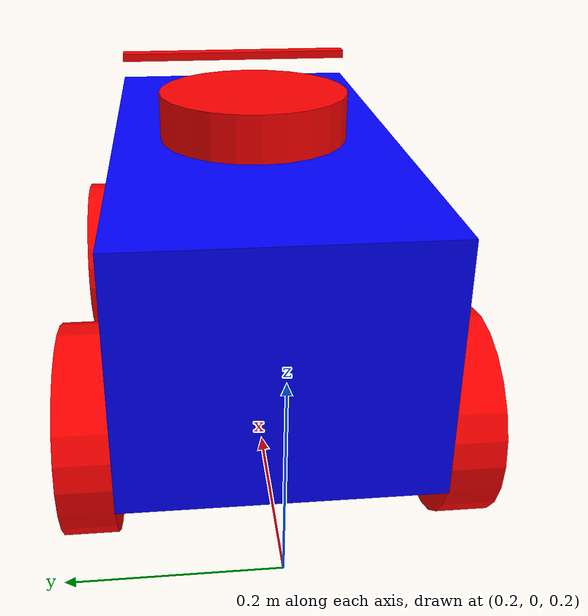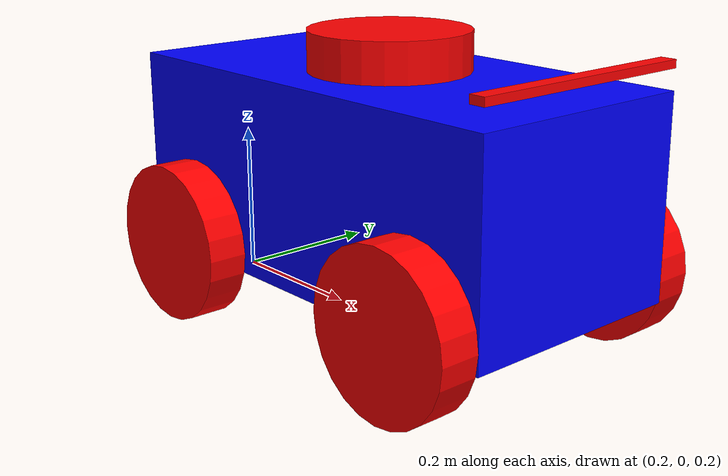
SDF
<?xml version="1.0" ?>
<sdf version="1.8">
        <model name='Joker' canonical_link='base_link'>
            <link name='base_link'>
                <pose relative_to='__model__'>0.5 0 0.4 0 0 0</pose>
                <inertial>
                    <inertia>
                        <ixx>0.001</ixx>
                        <ixy>0.000</ixy>
                        <ixz>0.000</ixz>
                        <iyy>0.001</iyy>
                        <iyz>0.000</iyz>
                        <izz>0.001</izz>
                    </inertia>
                    <mass>0.05</mass>
                </inertial>
                <visual name='visual'>
                    <geometry>
                        <box>
                            <size>0.6 0.3 0.25</size>
                        </box>
                    </geometry>
                    <!--let's add color to our link-->
                    <material>
                        <ambient>0.0 0.0 1.0 1</ambient>
                        <diffuse>0.0 0.0 1.0 1</diffuse>
                        <specular>0.0 0.0 1.0 1</specular>
                    </material>
                </visual>
                <collision name='collision'> <!--todo: describe why we need the collision-->
                    <geometry>
                        <box>
                            <size>0.6 0.3 0.25</size>
                        </box>
                    </geometry>
                </collision>
            </link>

            <link name='base_camera'>
                <pose relative_to="base_link">0.29 0 0.155 0 0 0</pose>

                <inertial>
                    <mass>0.2</mass>
                    <inertia>
                        <ixx>0.03</ixx>
                        <ixy>0</ixy>
                        <ixz>0</ixz>
                        <iyy>0.03</iyy>
                        <iyz>0</iyz>
                        <izz>0.003</izz>
                    </inertia>
                </inertial>
                <visual name='visual'>
                    <geometry>
                        <box>
                            <size>0.02 0.3 0.01</size>
                        </box>
                    </geometry>
                    <material>
                        <ambient>1.0 0.0 0.0 1</ambient>
                        <diffuse>1.0 0.0 0.0 1</diffuse>
                        <specular>1.0 0.0 0.0 1</specular>
                    </material>
                </visual>
                <collision name='collision'>
                    <geometry>
                        <box>
                            <size>0.02 0.3 0.01</size>
                        </box>
                    </geometry>
                </collision>
            </link>

            <link name='base_scan'>
                <pose relative_to="base_link">0 0 0.15 0 0 0</pose>

                <inertial>
                    <mass>0.2</mass>
                    <inertia>
                        <ixx>0.086667</ixx>
                        <ixy>0</ixy>
                        <ixz>0</ixz>
                        <iyy>0.086667</iyy>
                        <iyz>0</iyz>
                        <izz>0.16</izz>
                    </inertia>
                </inertial>
                <visual name='visual'>
                    <geometry>
                        <cylinder>
                            <radius>0.1</radius>
                            <length>0.05</length>
                        </cylinder>
                    </geometry>
                    <material>
                        <ambient>1.0 0.0 0.0 1</ambient>
                        <diffuse>1.0 0.0 0.0 1</diffuse>
                        <specular>1.0 0.0 0.0 1</specular>
                    </material>
                </visual>
                <collision name='collision'>
                    <geometry>
                        <cylinder>
                            <radius>0.1</radius>
                            <length>0.05</length>
                        </cylinder>
                    </geometry>
                </collision>
            </link>

            <!--let's build the left wheel-->
            <link name='left_back_wheel'>
                <pose relative_to="base_link">-0.2 0.175 -0.1 -1.5707 0 0</pose> <!--angles are in radian-->
                <inertial>
                    <inertia>
                        <ixx>0.001</ixx>
                        <ixy>0.000</ixy>
                        <ixz>0.000</ixz>
                        <iyy>0.001</iyy>
                        <iyz>0.000</iyz>
                        <izz>0.001</izz>
                    </inertia>
                    <mass>0.01</mass>
                </inertial>
                <visual name='visual'>
                    <geometry>
                        <cylinder>
                            <radius>0.1</radius>
                            <length>0.05</length>
                        </cylinder>
                    </geometry>
                    <material>
                        <ambient>1.0 0.0 0.0 1</ambient>
                        <diffuse>1.0 0.0 0.0 1</diffuse>
                        <specular>1.0 0.0 0.0 1</specular>
                    </material>
                </visual>
                <collision name='collision'>
                    <geometry>
                        <cylinder>
                            <radius>0.1</radius>
                            <length>0.05</length>
                        </cylinder>
                    </geometry>
                </collision>
            </link>

            <!--copy and paste for right wheel but change position-->
            <link name='right_back_wheel'>
                <pose relative_to="base_link">-0.2 -0.175 -0.1 -1.5707 0 0</pose> <!--angles are in radian-->
                <inertial>
                    <inertia>
                        <ixx>0.001</ixx>
                        <ixy>0.000</ixy>
                        <ixz>0.000</ixz>
                        <iyy>0.001</iyy>
                        <iyz>0.000</iyz>
                        <izz>0.001</izz>
                    </inertia>
                    <mass>0.01</mass>
                </inertial>
                <visual name='visual'>
                    <geometry>
                        <cylinder>
                            <radius>0.1</radius>
                            <length>0.05</length>
                        </cylinder>
                    </geometry>
                    <material>
                        <ambient>1.0 0.0 0.0 1</ambient>
                        <diffuse>1.0 0.0 0.0 1</diffuse>
                        <specular>1.0 0.0 0.0 1</specular>
                    </material>
                </visual>
                <collision name='collision'>
                    <geometry>
                        <cylinder>
                            <radius>0.1</radius>
                            <length>0.05</length>
                        </cylinder>
                    </geometry>
                </collision>
            </link>

            <link name='left_front_wheel'>
                <pose relative_to="base_link">0.2 0.175 -0.1 -1.5707 0 0</pose> <!--angles are in radian-->
                <inertial>
                    <inertia>
                        <ixx>0.001</ixx>
                        <ixy>0.000</ixy>
                        <ixz>0.000</ixz>
                        <iyy>0.001</iyy>
                        <iyz>0.000</iyz>
                        <izz>0.001</izz>
                    </inertia>
                    <mass>0.01</mass>
                </inertial>
                <visual name='visual'>
                    <geometry>
                        <cylinder>
                            <radius>0.1</radius>
                            <length>0.05</length>
                        </cylinder>
                    </geometry>
                    <material>
                        <ambient>1.0 0.0 0.0 1</ambient>
                        <diffuse>1.0 0.0 0.0 1</diffuse>
                        <specular>1.0 0.0 0.0 1</specular>
                    </material>
                </visual>
                <collision name='collision'>
                    <geometry>
                        <cylinder>
                            <radius>0.1</radius>
                            <length>0.05</length>
                        </cylinder>
                    </geometry>
                </collision>
            </link>

            <link name='right_front_wheel'>
                <pose relative_to="base_link">0.2 -0.175 -0.1 -1.5707 0 0</pose> <!--angles are in radian-->
                <inertial>
                    <inertia>
                        <ixx>0.001</ixx>
                        <ixy>0.000</ixy>
                        <ixz>0.000</ixz>
                        <iyy>0.001</iyy>
                        <iyz>0.000</iyz>
                        <izz>0.001</izz>
                    </inertia>
                    <mass>0.01</mass>
                </inertial>
                <visual name='visual'>
                    <geometry>
                        <cylinder>
                            <radius>0.1</radius>
                            <length>0.05</length>
                        </cylinder>
                    </geometry>
                    <material>
                        <ambient>1.0 0.0 0.0 1</ambient>
                        <diffuse>1.0 0.0 0.0 1</diffuse>
                        <specular>1.0 0.0 0.0 1</specular>
                    </material>
                </visual>
                <collision name='collision'>
                    <geometry>
                        <cylinder>
                            <radius>0.1</radius>
                            <length>0.05</length>
                        </cylinder>
                    </geometry>
                </collision>
            </link>

            <joint name='camera_joint' type='fixed'>
                <pose relative_to='base_camera'/>
                <parent>base_link</parent>
                <child>base_camera</child>
                <axis>
                    <xyz>1 0 0</xyz>

                </axis>
            </joint>

            <joint name='scan_joint' type='fixed'>
                <pose relative_to='base_scan'/>
                <parent>base_link</parent>
                <child>base_scan</child>
                <axis>
                    <xyz >1 0 0</xyz>
                </axis>
            </joint>

            <!--connecting these links together using joints-->
            <joint name='left_back_joint' type='revolute'> <!--continous joint is not supported yet-->
                <pose relative_to='left_back_wheel'/>
                <parent>base_link</parent>
                <child>left_back_wheel</child>
                <axis>
                    <xyz >0 0 1</xyz> <!--can be defined as any frame or even arbitrary frames-->
                </axis>
            </joint>

            <joint name='right_back_joint' type='revolute'>
                <pose relative_to='right_back_wheel'/>
                <parent>base_link</parent>
                <child>right_back_wheel</child>
                <axis>
                    <xyz>0 0 1</xyz>
                </axis>
            </joint>

            <joint name='left_front_joint' type='revolute'> <!--continous joint is not supported yet-->
                <pose relative_to='left_front_wheel'/>
                <parent>base_link</parent>
                <child>left_front_wheel</child>
                <axis>
                    <xyz>0 0 1</xyz>
                </axis>
            </joint>

            <joint name='right_front_joint' type='revolute'>
                <pose relative_to='right_front_wheel'/>
                <parent>base_link</parent>
                <child>right_front_wheel</child>
                <axis>
                    <xyz>0 0 1</xyz>
                </axis>
            </joint>

        </model>
</sdf>
